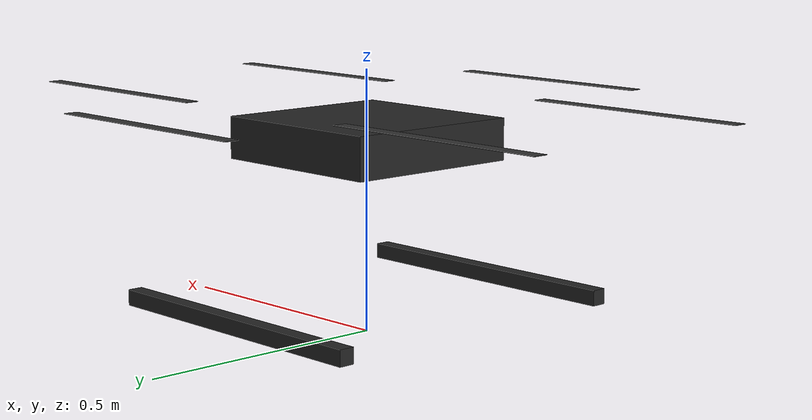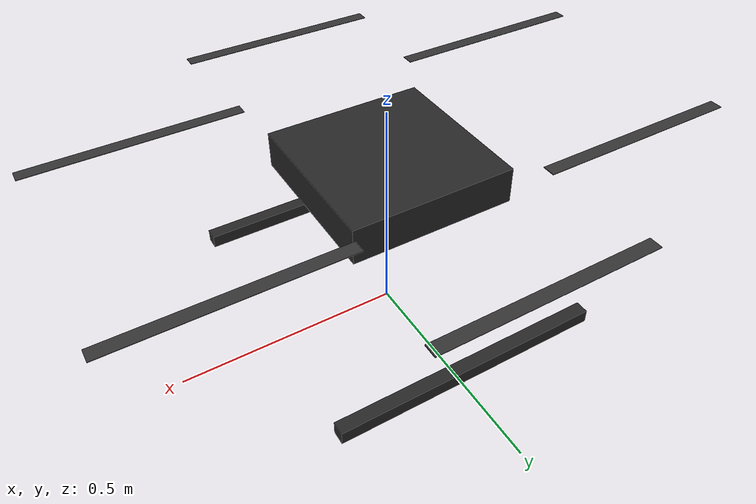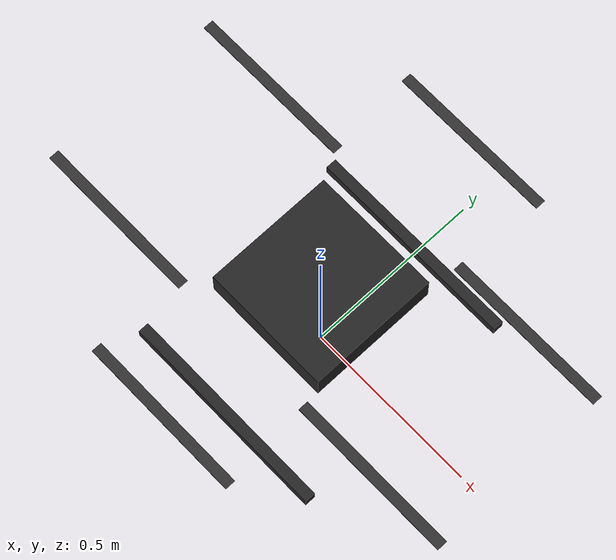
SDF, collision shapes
<?xml version='1.0' encoding='UTF-8'?>
<sdf version="1.9">
  <model name="eft_x6100_base">
    <pose>0 0 0.35 0 0 0</pose>
    <self_collide>false</self_collide>
    <static>false</static>
    <enable_wind>true</enable_wind>
    <link name="base_link">
      <inertial>
        <mass>7.881</mass>
        <inertia>
          <ixx>0.34</ixx>
          <ixy>0</ixy>
          <ixz>0</ixz>
          <iyy>0.34</iyy>
          <iyz>0</iyz>
          <izz>0.64</izz>
        </inertia>
      </inertial>
      <gravity>true</gravity>
      <velocity_decay/>

      <!-- centre body -->
      <visual name="body_visual">
        <pose>0 0 0.02 0 0 0</pose>
        <geometry>
          <cylinder>
            <radius>0.18</radius>
            <length>0.09</length>
          </cylinder>
        </geometry>
        <material>
          <ambient>0.1 0.1 0.1 1</ambient>
          <diffuse>0.15 0.15 0.15 1</diffuse>
        </material>
      </visual>
      <!-- nose marker so heading is readable in the GUI -->
      <visual name="nose_visual">
        <pose>0.20 0 0.02 0 1.5708 0</pose>
        <geometry>
          <cylinder>
            <radius>0.02</radius>
            <length>0.10</length>
          </cylinder>
        </geometry>
        <material>
          <ambient>0.8 0.1 0.1 1</ambient>
          <diffuse>0.9 0.15 0.15 1</diffuse>
        </material>
      </visual>

      <!-- 6 arms at +/-30, +/-90, +/-150 deg (hexa-X: no arm on the nose) -->
      <visual name="arm_0">
        <pose>0 -0.325 0.03 0 1.5708 -1.5708</pose>
        <geometry>
          <cylinder><radius>0.0125</radius><length>0.35</length></cylinder>
        </geometry>
        <material><ambient>0.05 0.05 0.05 1</ambient><diffuse>0.1 0.1 0.1 1</diffuse></material>
      </visual>
      <visual name="arm_1">
        <pose>0 0.325 0.03 0 1.5708 1.5708</pose>
        <geometry>
          <cylinder><radius>0.0125</radius><length>0.35</length></cylinder>
        </geometry>
        <material><ambient>0.05 0.05 0.05 1</ambient><diffuse>0.1 0.1 0.1 1</diffuse></material>
      </visual>
      <visual name="arm_2">
        <pose>0.2815 0.1625 0.03 0 1.5708 0.5236</pose>
        <geometry>
          <cylinder><radius>0.0125</radius><length>0.35</length></cylinder>
        </geometry>
        <material><ambient>0.05 0.05 0.05 1</ambient><diffuse>0.1 0.1 0.1 1</diffuse></material>
      </visual>
      <visual name="arm_3">
        <pose>-0.2815 -0.1625 0.03 0 1.5708 -2.6180</pose>
        <geometry>
          <cylinder><radius>0.0125</radius><length>0.35</length></cylinder>
        </geometry>
        <material><ambient>0.05 0.05 0.05 1</ambient><diffuse>0.1 0.1 0.1 1</diffuse></material>
      </visual>
      <visual name="arm_4">
        <pose>0.2815 -0.1625 0.03 0 1.5708 -0.5236</pose>
        <geometry>
          <cylinder><radius>0.0125</radius><length>0.35</length></cylinder>
        </geometry>
        <material><ambient>0.05 0.05 0.05 1</ambient><diffuse>0.1 0.1 0.1 1</diffuse></material>
      </visual>
      <visual name="arm_5">
        <pose>-0.2815 0.1625 0.03 0 1.5708 2.6180</pose>
        <geometry>
          <cylinder><radius>0.0125</radius><length>0.35</length></cylinder>
        </geometry>
        <material><ambient>0.05 0.05 0.05 1</ambient><diffuse>0.1 0.1 0.1 1</diffuse></material>
      </visual>

      <!-- motor cans, one per rotor station -->
      <visual name="motor_can_0">
        <pose>0 -0.50 0.055 0 0 0</pose>
        <geometry><cylinder><radius>0.028</radius><length>0.05</length></cylinder></geometry>
        <material><ambient>0.2 0.2 0.2 1</ambient><diffuse>0.3 0.3 0.3 1</diffuse></material>
      </visual>
      <visual name="motor_can_1">
        <pose>0 0.50 0.055 0 0 0</pose>
        <geometry><cylinder><radius>0.028</radius><length>0.05</length></cylinder></geometry>
        <material><ambient>0.2 0.2 0.2 1</ambient><diffuse>0.3 0.3 0.3 1</diffuse></material>
      </visual>
      <visual name="motor_can_2">
        <pose>0.433 0.25 0.055 0 0 0</pose>
        <geometry><cylinder><radius>0.028</radius><length>0.05</length></cylinder></geometry>
        <material><ambient>0.2 0.2 0.2 1</ambient><diffuse>0.3 0.3 0.3 1</diffuse></material>
      </visual>
      <visual name="motor_can_3">
        <pose>-0.433 -0.25 0.055 0 0 0</pose>
        <geometry><cylinder><radius>0.028</radius><length>0.05</length></cylinder></geometry>
        <material><ambient>0.2 0.2 0.2 1</ambient><diffuse>0.3 0.3 0.3 1</diffuse></material>
      </visual>
      <visual name="motor_can_4">
        <pose>0.433 -0.25 0.055 0 0 0</pose>
        <geometry><cylinder><radius>0.028</radius><length>0.05</length></cylinder></geometry>
        <material><ambient>0.2 0.2 0.2 1</ambient><diffuse>0.3 0.3 0.3 1</diffuse></material>
      </visual>
      <visual name="motor_can_5">
        <pose>-0.433 0.25 0.055 0 0 0</pose>
        <geometry><cylinder><radius>0.028</radius><length>0.05</length></cylinder></geometry>
        <material><ambient>0.2 0.2 0.2 1</ambient><diffuse>0.3 0.3 0.3 1</diffuse></material>
      </visual>

      <!-- landing gear: 4 legs + 2 skid rails, 0.30 m tall -->
      <visual name="gear_leg_0">
        <pose>0.20 0.32 -0.15 0 0 0</pose>
        <geometry><box><size>0.025 0.025 0.26</size></box></geometry>
        <material><ambient>0.05 0.05 0.05 1</ambient><diffuse>0.1 0.1 0.1 1</diffuse></material>
      </visual>
      <visual name="gear_leg_1">
        <pose>0.20 -0.32 -0.15 0 0 0</pose>
        <geometry><box><size>0.025 0.025 0.26</size></box></geometry>
        <material><ambient>0.05 0.05 0.05 1</ambient><diffuse>0.1 0.1 0.1 1</diffuse></material>
      </visual>
      <visual name="gear_leg_2">
        <pose>-0.20 0.32 -0.15 0 0 0</pose>
        <geometry><box><size>0.025 0.025 0.26</size></box></geometry>
        <material><ambient>0.05 0.05 0.05 1</ambient><diffuse>0.1 0.1 0.1 1</diffuse></material>
      </visual>
      <visual name="gear_leg_3">
        <pose>-0.20 -0.32 -0.15 0 0 0</pose>
        <geometry><box><size>0.025 0.025 0.26</size></box></geometry>
        <material><ambient>0.05 0.05 0.05 1</ambient><diffuse>0.1 0.1 0.1 1</diffuse></material>
      </visual>
      <visual name="gear_rail_left">
        <pose>0 0.32 -0.283 0 0 0</pose>
        <geometry><box><size>0.60 0.03 0.03</size></box></geometry>
        <material><ambient>0.05 0.05 0.05 1</ambient><diffuse>0.1 0.1 0.1 1</diffuse></material>
      </visual>
      <visual name="gear_rail_right">
        <pose>0 -0.32 -0.283 0 0 0</pose>
        <geometry><box><size>0.60 0.03 0.03</size></box></geometry>
        <material><ambient>0.05 0.05 0.05 1</ambient><diffuse>0.1 0.1 0.1 1</diffuse></material>
      </visual>

      <visual name="drop_servo_0">
        <pose>0.10 0.035 0 0 0 0</pose>
        <geometry><box><size>0.030 0.015 0.030</size></box></geometry>
        <material><ambient>0.15 0.15 0.60 1</ambient><diffuse>0.2 0.2 0.8 1</diffuse></material>
      </visual>
      <visual name="drop_servo_1">
        <pose>-0.10 -0.035 0 0 0 0</pose>
        <geometry><box><size>0.030 0.015 0.030</size></box></geometry>
        <material><ambient>0.15 0.15 0.60 1</ambient><diffuse>0.2 0.2 0.8 1</diffuse></material>
      </visual>
      <visual name="drop_servo_2">
        <pose>0.10 -0.035 0 0 0 0</pose>
        <geometry><box><size>0.030 0.015 0.030</size></box></geometry>
        <material><ambient>0.15 0.15 0.60 1</ambient><diffuse>0.2 0.2 0.8 1</diffuse></material>
      </visual>
      <visual name="drop_servo_3">
        <pose>-0.10 0.035 0 0 0 0</pose>
        <geometry><box><size>0.030 0.015 0.030</size></box></geometry>
        <material><ambient>0.15 0.15 0.60 1</ambient><diffuse>0.2 0.2 0.8 1</diffuse></material>
      </visual>

      <!-- collisions: centre body + the two skid rails that actually touch down.
           Contact params copied from the x500 (min_depth/max_vel keep the
           touchdown from bouncing). -->
      <collision name="base_link_collision_body">
        <pose>0 0 0.02 0 0 0</pose>
        <geometry><box><size>0.36 0.36 0.08</size></box></geometry>
        <surface>
          <!-- bitmask 0xfd = everything EXCEPT the cargo boxes (0x02): the
               boxes' tops sit AT the CG plane inside this volume (user
               z-spec 2026-08-12) — see cargo_payload/model.sdf. -->
          <contact><collide_bitmask>0xfd</collide_bitmask>
            <ode><min_depth>0.001</min_depth><max_vel>0</max_vel></ode></contact>
          <friction><ode/></friction>
        </surface>
      </collision>
      <collision name="base_link_collision_rail_left">
        <pose>0 0.32 -0.283 0 0 0</pose>
        <geometry><box><size>0.60 0.03 0.03</size></box></geometry>
        <surface>
          <contact><collide_bitmask>0xfd</collide_bitmask>
            <ode><min_depth>0.001</min_depth><max_vel>0</max_vel></ode></contact>
          <friction><ode/></friction>
        </surface>
      </collision>
      <collision name="base_link_collision_rail_right">
        <pose>0 -0.32 -0.283 0 0 0</pose>
        <geometry><box><size>0.60 0.03 0.03</size></box></geometry>
        <surface>
          <contact><collide_bitmask>0xfd</collide_bitmask>
            <ode><min_depth>0.001</min_depth><max_vel>0</max_vel></ode></contact>
          <friction><ode/></friction>
        </surface>
      </collision>

      <sensor name="air_pressure_sensor" type="air_pressure">
        <always_on>1</always_on>
        <update_rate>50</update_rate>
        <air_pressure>
          <pressure>
            <noise type="gaussian">
              <mean>0</mean>
              <stddev>0.01</stddev>
            </noise>
          </pressure>
        </air_pressure>
      </sensor>
      <sensor name="imu_sensor" type="imu">
        <always_on>1</always_on>
        <update_rate>250</update_rate>
        <imu>
          <angular_velocity>
            <x>
              <noise type="gaussian">
                <mean>0</mean>
                <stddev>0.00018665</stddev>
                <dynamic_bias_stddev>3.8785e-05</dynamic_bias_stddev>
                <dynamic_bias_correlation_time>1000</dynamic_bias_correlation_time>
              </noise>
            </x>
            <y>
              <noise type="gaussian">
                <mean>0</mean>
                <stddev>0.00018665</stddev>
                <dynamic_bias_stddev>3.8785e-05</dynamic_bias_stddev>
                <dynamic_bias_correlation_time>1000</dynamic_bias_correlation_time>
              </noise>
            </y>
            <z>
              <noise type="gaussian">
                <mean>0</mean>
                <stddev>0.00018665</stddev>
                <dynamic_bias_stddev>3.8785e-05</dynamic_bias_stddev>
                <dynamic_bias_correlation_time>1000</dynamic_bias_correlation_time>
              </noise>
            </z>
          </angular_velocity>
          <linear_acceleration>
            <x>
              <noise type="gaussian">
                <mean>0</mean>
                <stddev>0.00186</stddev>
                <dynamic_bias_stddev>0.006</dynamic_bias_stddev>
                <dynamic_bias_correlation_time>300</dynamic_bias_correlation_time>
              </noise>
            </x>
            <y>
              <noise type="gaussian">
                <mean>0</mean>
                <stddev>0.00186</stddev>
                <dynamic_bias_stddev>0.006</dynamic_bias_stddev>
                <dynamic_bias_correlation_time>300</dynamic_bias_correlation_time>
              </noise>
            </y>
            <z>
              <noise type="gaussian">
                <mean>0</mean>
                <stddev>0.00186</stddev>
                <dynamic_bias_stddev>0.006</dynamic_bias_stddev>
                <dynamic_bias_correlation_time>300</dynamic_bias_correlation_time>
              </noise>
            </z>
          </linear_acceleration>
        </imu>
      </sensor>
      <sensor name="magnetometer_sensor" type="magnetometer">
        <gz_frame_id>base_link</gz_frame_id>
        <always_on>1</always_on>
        <update_rate>100</update_rate>
        <magnetometer>
          <x>
            <noise type="gaussian">
              <stddev>0.0001</stddev>
            </noise>
          </x>
          <y>
            <noise type="gaussian">
              <stddev>0.0001</stddev>
            </noise>
          </y>
          <z>
            <noise type="gaussian">
              <stddev>0.0001</stddev>
            </noise>
          </z>
        </magnetometer>
      </sensor>
      <sensor name="navsat_sensor" type="navsat">
        <always_on>1</always_on>
        <update_rate>30</update_rate>
      </sensor>
    </link>

    <joint name="lidar_sensor_joint" type="fixed">
      <parent>base_link</parent>
      <child>lidar_sensor_link</child>
    </joint>
    <link name="lidar_sensor_link">
      <pose relative_to="base_link">0 0 -0.25 0 1.57 0</pose>
      <inertial>
        <mass>0.001</mass>
        <inertia>
          <ixx>0.00001</ixx>
          <iyy>0.00001</iyy>
          <izz>0.00001</izz>
          <ixy>0.0</ixy>
          <ixz>0.0</ixz>
          <iyz>0.0</iyz>
        </inertia>
      </inertial>
      <sensor name='lidar' type='gpu_lidar'>
        <gz_frame_id>lidar_sensor_link</gz_frame_id>
        <pose>0 0 0 3.14 0 0</pose>
        <update_rate>10</update_rate>
        <ray>
          <scan>
            <horizontal>
              <samples>1</samples>
              <resolution>1</resolution>
              <min_angle>0</min_angle>
              <max_angle>0</max_angle>
            </horizontal>
            <vertical>
              <samples>1</samples>
              <resolution>1</resolution>
              <min_angle>0</min_angle>
              <max_angle>0</max_angle>
            </vertical>
          </scan>
          <range>
            <min>0.1</min>
            <max>12.0</max>
            <resolution>0.01</resolution>
          </range>
        </ray>
        <always_on>1</always_on>
        <!-- Ray markers are a GUI-only nicety and the stack runs headless. -->
        <visualize>false</visualize>
      </sensor>
    </link>

    <!-- rotors: link N == PX4 Motor N+1 (see header table) -->
    <link name="rotor_0">
      <gravity>true</gravity>
      <self_collide>false</self_collide>
      <velocity_decay/>
      <pose>0 -0.50 0.09 0 0 0</pose>
      <inertial>
        <mass>0.048</mass>
        <inertia>
          <ixx>2.0e-06</ixx>
          <iyy>8.30e-04</iyy>
          <!-- thin-plate: izz = ixx + iyy. gz rejects the whole model if
               izz > ixx + iyy (triangle inequality), so keep it at/below. -->
          <izz>8.30e-04</izz>
        </inertia>
      </inertial>
      <visual name="rotor_0_visual">
        <pose>-0.036 -0.240 -0.018 0 0 0</pose>
        <geometry>
          <mesh>
            <scale>1.385 1.385 1.385</scale>
            <uri>model://x500_base/meshes/1345_prop_cw.stl</uri>
          </mesh>
        </geometry>
        <material>
          <ambient>0.15 0.15 0.15 1</ambient>
          <diffuse>0.2 0.2 0.2 1</diffuse>
        </material>
      </visual>
      <collision name="rotor_0_collision">
        <pose>0 0 0 0 0 0</pose>
        <geometry><box><size>0.457 0.028 0.0012</size></box></geometry>
        <surface>
          <contact><ode><min_depth>0.001</min_depth><max_vel>0</max_vel></ode></contact>
          <friction><ode/></friction>
        </surface>
      </collision>
    </link>
    <joint name="rotor_0_joint" type="revolute">
      <parent>base_link</parent>
      <child>rotor_0</child>
      <axis>
        <xyz>0 0 1</xyz>
        <limit><lower>-1e+16</lower><upper>1e+16</upper></limit>
        <dynamics><spring_reference>0</spring_reference><spring_stiffness>0</spring_stiffness></dynamics>
      </axis>
    </joint>

    <link name="rotor_1">
      <gravity>true</gravity>
      <self_collide>false</self_collide>
      <velocity_decay/>
      <pose>0 0.50 0.09 0 0 0</pose>
      <inertial>
        <mass>0.048</mass>
        <inertia>
          <ixx>2.0e-06</ixx>
          <iyy>8.30e-04</iyy>
          <!-- thin-plate: izz = ixx + iyy. gz rejects the whole model if
               izz > ixx + iyy (triangle inequality), so keep it at/below. -->
          <izz>8.30e-04</izz>
        </inertia>
      </inertial>
      <visual name="rotor_1_visual">
        <pose>-0.036 -0.240 -0.018 0 0 0</pose>
        <geometry>
          <mesh>
            <scale>1.385 1.385 1.385</scale>
            <uri>model://x500_base/meshes/1345_prop_ccw.stl</uri>
          </mesh>
        </geometry>
        <material>
          <ambient>0.15 0.15 0.15 1</ambient>
          <diffuse>0.2 0.2 0.2 1</diffuse>
        </material>
      </visual>
      <collision name="rotor_1_collision">
        <pose>0 0 0 0 0 0</pose>
        <geometry><box><size>0.457 0.028 0.0012</size></box></geometry>
        <surface>
          <contact><ode><min_depth>0.001</min_depth><max_vel>0</max_vel></ode></contact>
          <friction><ode/></friction>
        </surface>
      </collision>
    </link>
    <joint name="rotor_1_joint" type="revolute">
      <parent>base_link</parent>
      <child>rotor_1</child>
      <axis>
        <xyz>0 0 1</xyz>
        <limit><lower>-1e+16</lower><upper>1e+16</upper></limit>
        <dynamics><spring_reference>0</spring_reference><spring_stiffness>0</spring_stiffness></dynamics>
      </axis>
    </joint>

    <link name="rotor_2">
      <gravity>true</gravity>
      <self_collide>false</self_collide>
      <velocity_decay/>
      <pose>0.433 0.25 0.09 0 0 0</pose>
      <inertial>
        <mass>0.048</mass>
        <inertia>
          <ixx>2.0e-06</ixx>
          <iyy>8.30e-04</iyy>
          <!-- thin-plate: izz = ixx + iyy. gz rejects the whole model if
               izz > ixx + iyy (triangle inequality), so keep it at/below. -->
          <izz>8.30e-04</izz>
        </inertia>
      </inertial>
      <visual name="rotor_2_visual">
        <pose>-0.036 -0.240 -0.018 0 0 0</pose>
        <geometry>
          <mesh>
            <scale>1.385 1.385 1.385</scale>
            <uri>model://x500_base/meshes/1345_prop_cw.stl</uri>
          </mesh>
        </geometry>
        <material>
          <ambient>0.15 0.15 0.15 1</ambient>
          <diffuse>0.2 0.2 0.2 1</diffuse>
        </material>
      </visual>
      <collision name="rotor_2_collision">
        <pose>0 0 0 0 0 0</pose>
        <geometry><box><size>0.457 0.028 0.0012</size></box></geometry>
        <surface>
          <contact><ode><min_depth>0.001</min_depth><max_vel>0</max_vel></ode></contact>
          <friction><ode/></friction>
        </surface>
      </collision>
    </link>
    <joint name="rotor_2_joint" type="revolute">
      <parent>base_link</parent>
      <child>rotor_2</child>
      <axis>
        <xyz>0 0 1</xyz>
        <limit><lower>-1e+16</lower><upper>1e+16</upper></limit>
        <dynamics><spring_reference>0</spring_reference><spring_stiffness>0</spring_stiffness></dynamics>
      </axis>
    </joint>

    <link name="rotor_3">
      <gravity>true</gravity>
      <self_collide>false</self_collide>
      <velocity_decay/>
      <pose>-0.433 -0.25 0.09 0 0 0</pose>
      <inertial>
        <mass>0.048</mass>
        <inertia>
          <ixx>2.0e-06</ixx>
          <iyy>8.30e-04</iyy>
          <!-- thin-plate: izz = ixx + iyy. gz rejects the whole model if
               izz > ixx + iyy (triangle inequality), so keep it at/below. -->
          <izz>8.30e-04</izz>
        </inertia>
      </inertial>
      <visual name="rotor_3_visual">
        <pose>-0.036 -0.240 -0.018 0 0 0</pose>
        <geometry>
          <mesh>
            <scale>1.385 1.385 1.385</scale>
            <uri>model://x500_base/meshes/1345_prop_ccw.stl</uri>
          </mesh>
        </geometry>
        <material>
          <ambient>0.15 0.15 0.15 1</ambient>
          <diffuse>0.2 0.2 0.2 1</diffuse>
        </material>
      </visual>
      <collision name="rotor_3_collision">
        <pose>0 0 0 0 0 0</pose>
        <geometry><box><size>0.457 0.028 0.0012</size></box></geometry>
        <surface>
          <contact><ode><min_depth>0.001</min_depth><max_vel>0</max_vel></ode></contact>
          <friction><ode/></friction>
        </surface>
      </collision>
    </link>
    <joint name="rotor_3_joint" type="revolute">
      <parent>base_link</parent>
      <child>rotor_3</child>
      <axis>
        <xyz>0 0 1</xyz>
        <limit><lower>-1e+16</lower><upper>1e+16</upper></limit>
        <dynamics><spring_reference>0</spring_reference><spring_stiffness>0</spring_stiffness></dynamics>
      </axis>
    </joint>

    <link name="rotor_4">
      <gravity>true</gravity>
      <self_collide>false</self_collide>
      <velocity_decay/>
      <pose>0.433 -0.25 0.09 0 0 0</pose>
      <inertial>
        <mass>0.048</mass>
        <inertia>
          <ixx>2.0e-06</ixx>
          <iyy>8.30e-04</iyy>
          <!-- thin-plate: izz = ixx + iyy. gz rejects the whole model if
               izz > ixx + iyy (triangle inequality), so keep it at/below. -->
          <izz>8.30e-04</izz>
        </inertia>
      </inertial>
      <visual name="rotor_4_visual">
        <pose>-0.036 -0.240 -0.018 0 0 0</pose>
        <geometry>
          <mesh>
            <scale>1.385 1.385 1.385</scale>
            <uri>model://x500_base/meshes/1345_prop_ccw.stl</uri>
          </mesh>
        </geometry>
        <material>
          <ambient>0.15 0.15 0.15 1</ambient>
          <diffuse>0.2 0.2 0.2 1</diffuse>
        </material>
      </visual>
      <collision name="rotor_4_collision">
        <pose>0 0 0 0 0 0</pose>
        <geometry><box><size>0.457 0.028 0.0012</size></box></geometry>
        <surface>
          <contact><ode><min_depth>0.001</min_depth><max_vel>0</max_vel></ode></contact>
          <friction><ode/></friction>
        </surface>
      </collision>
    </link>
    <joint name="rotor_4_joint" type="revolute">
      <parent>base_link</parent>
      <child>rotor_4</child>
      <axis>
        <xyz>0 0 1</xyz>
        <limit><lower>-1e+16</lower><upper>1e+16</upper></limit>
        <dynamics><spring_reference>0</spring_reference><spring_stiffness>0</spring_stiffness></dynamics>
      </axis>
    </joint>

    <link name="rotor_5">
      <gravity>true</gravity>
      <self_collide>false</self_collide>
      <velocity_decay/>
      <pose>-0.433 0.25 0.09 0 0 0</pose>
      <inertial>
        <mass>0.048</mass>
        <inertia>
          <ixx>2.0e-06</ixx>
          <iyy>8.30e-04</iyy>
          <!-- thin-plate: izz = ixx + iyy. gz rejects the whole model if
               izz > ixx + iyy (triangle inequality), so keep it at/below. -->
          <izz>8.30e-04</izz>
        </inertia>
      </inertial>
      <visual name="rotor_5_visual">
        <pose>-0.036 -0.240 -0.018 0 0 0</pose>
        <geometry>
          <mesh>
            <scale>1.385 1.385 1.385</scale>
            <uri>model://x500_base/meshes/1345_prop_cw.stl</uri>
          </mesh>
        </geometry>
        <material>
          <ambient>0.15 0.15 0.15 1</ambient>
          <diffuse>0.2 0.2 0.2 1</diffuse>
        </material>
      </visual>
      <collision name="rotor_5_collision">
        <pose>0 0 0 0 0 0</pose>
        <geometry><box><size>0.457 0.028 0.0012</size></box></geometry>
        <surface>
          <contact><ode><min_depth>0.001</min_depth><max_vel>0</max_vel></ode></contact>
          <friction><ode/></friction>
        </surface>
      </collision>
    </link>
    <joint name="rotor_5_joint" type="revolute">
      <parent>base_link</parent>
      <child>rotor_5</child>
      <axis>
        <xyz>0 0 1</xyz>
        <limit><lower>-1e+16</lower><upper>1e+16</upper></limit>
        <dynamics><spring_reference>0</spring_reference><spring_stiffness>0</spring_stiffness></dynamics>
      </axis>
    </joint>
  </model>
</sdf>
